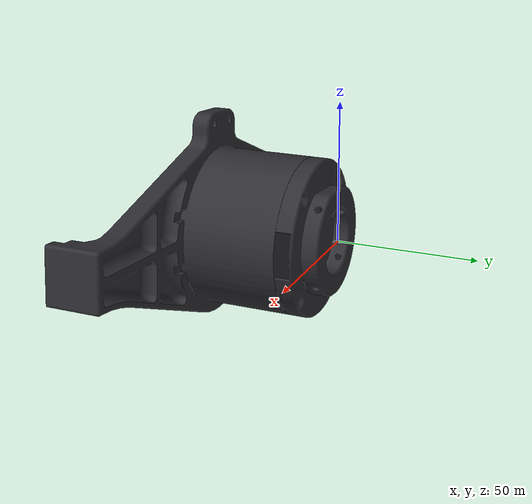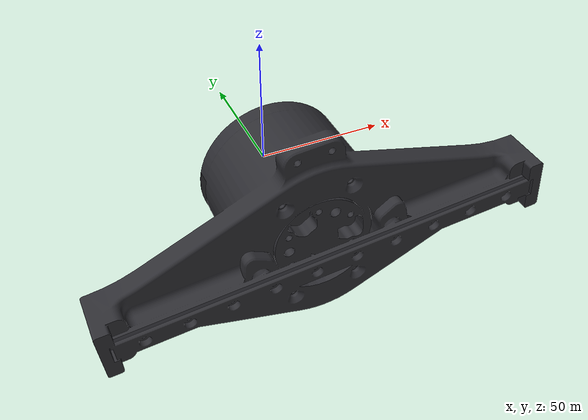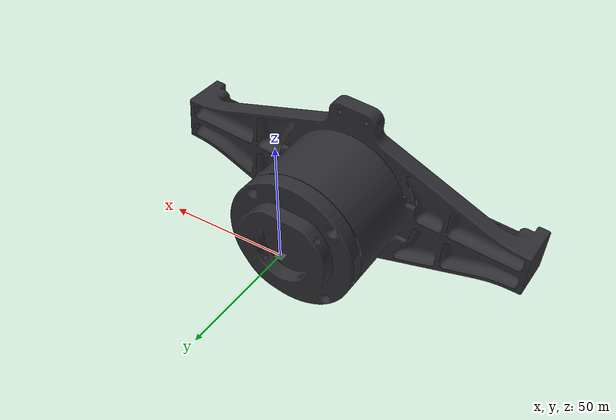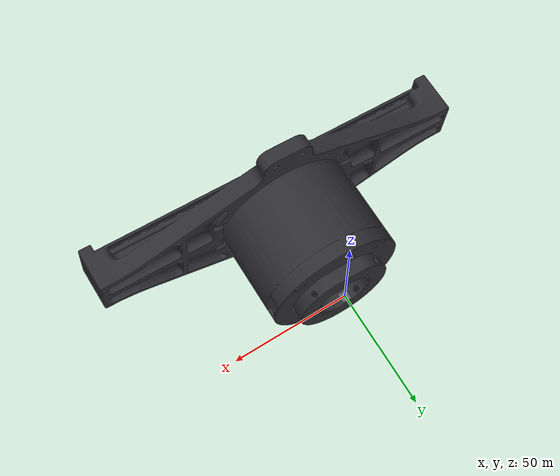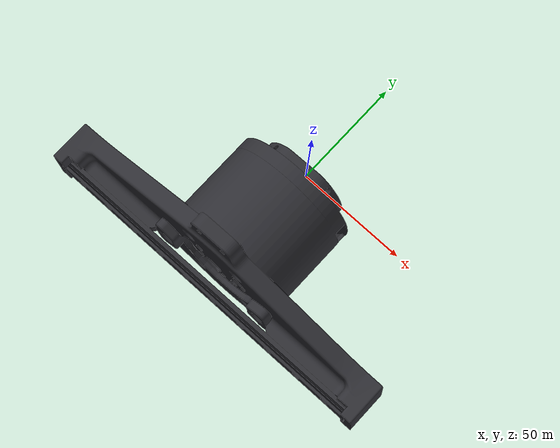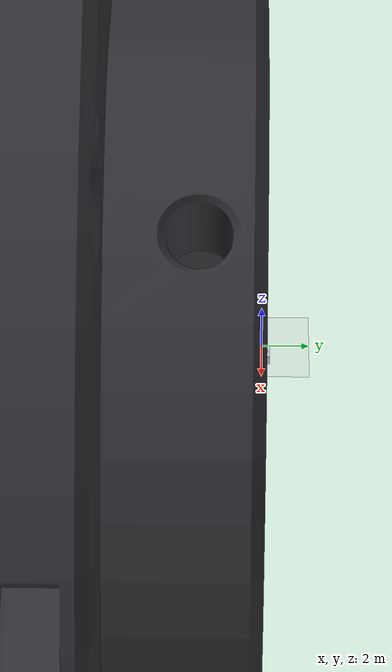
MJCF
<mujoco model="piper_x_scene">
  <compiler angle="radian" meshdir="meshes" autolimits="true"/>

  <option timestep="0.002" gravity="0 0 -9.81" iterations="50" solver="Newton" cone="elliptic"/>

  <asset>
    <texture type="skybox" builtin="gradient" rgb1="0.9 0.92 0.96" rgb2="0.65 0.7 0.78" width="512" height="512"/>
    <texture name="grid" type="2d" builtin="checker" width="512" height="512" rgb1="0.88 0.88 0.88" rgb2="0.78 0.78 0.78"/>
    <material name="grid_mat" texture="grid" texrepeat="4 4" reflectance="0.05"/>
    <material name="table_mat" rgba="0.75 0.78 0.82 1" specular="0.2" roughness="0.5"/>
    <material name="tray_bottom_mat" rgba="0.2 0.6 0.35 1" specular="0.1" roughness="0.6"/>
    <material name="tray_rim_mat" rgba="0.15 0.45 0.25 1" specular="0.2" roughness="0.5"/>
    <material name="cube_red_mat" rgba="0.85 0.15 0.15 1" specular="0.3" roughness="0.4"/>
    <material name="cube_blue_mat" rgba="0.15 0.3 0.85 1" specular="0.3" roughness="0.4"/>

    <material name="arm_dark" rgba="0.18 0.18 0.20 1" specular="0.4" roughness="0.4"/>
    <material name="arm_light" rgba="0.88 0.88 0.90 1" specular="0.3" roughness="0.4"/>
    <material name="arm_metal" rgba="0.7 0.7 0.72 1" specular="0.6" roughness="0.2"/>

    <mesh name="base_link" file="base_link.stl"/>
    <mesh name="link1" file="link1.stl"/>
    <mesh name="link2" file="link2.stl"/>
    <mesh name="link3" file="link3.stl"/>
    <mesh name="link4" file="link4.stl"/>
    <mesh name="link5" file="link5.stl"/>
    <mesh name="link6" file="link6.stl"/>
    <mesh name="flange" file="flange.stl"/>
    <mesh name="gripper_base" file="gripper_base.stl"/>
    <mesh name="gripper_link1" file="gripper_link1.stl"/>
    <mesh name="gripper_link2" file="gripper_link2.stl"/>
  </asset>

  <worldbody>
    <geom name="floor" type="plane" size="2 2 0.05" material="grid_mat"/>

    <light directional="true" pos="0.5 -0.5 1.5" dir="-0.3 0.3 -1" diffuse="0.85 0.85 0.85" specular="0.2 0.2 0.2"/>
    <light directional="false" pos="0.3 0 1.2" diffuse="0.4 0.4 0.4"/>

    <camera name="overview_camera" pos="0.55 0.3 0.6" quat="0.324332 0.103432 0.285683 0.895821" fovy="55"/>

    <!-- Table: surface top at z = 0.0 -->
    <body name="table" pos="0.32 0.0 -0.20">
      <geom name="table_top" type="box" size="0.40 0.35 0.20" material="table_mat" friction="0.8 0.005 0.0001"/>
    </body>

    <!-- Target Tray: base centered at (0.35, 0.20, 0.003) -->
    <body name="tray" pos="0.35 0.20 0.003">
      <geom name="tray_base" type="box" size="0.07 0.07 0.003" material="tray_bottom_mat" friction="0.8 0.005 0.0001"/>
      <geom name="tray_rim_n" type="box" size="0.075 0.005 0.015" pos="0 0.075 0.012" material="tray_rim_mat"/>
      <geom name="tray_rim_s" type="box" size="0.075 0.005 0.015" pos="0 -0.075 0.012" material="tray_rim_mat"/>
      <geom name="tray_rim_e" type="box" size="0.005 0.07 0.015" pos="0.075 0 0.012" material="tray_rim_mat"/>
      <geom name="tray_rim_w" type="box" size="0.005 0.07 0.015" pos="-0.075 0 0.012" material="tray_rim_mat"/>
      <site name="tray_center" pos="0 0 0.005" size="0.01" rgba="0 1 0 0"/>
    </body>

    <!-- Rigid Cubes: side 0.030m (half-size 0.015m) -->
    <body name="cube_red" pos="0.32 -0.10 0.015">
      <freejoint name="cube_red_joint"/>
      <geom name="cube_red_geom" type="box" size="0.015 0.015 0.015" mass="0.05" material="cube_red_mat"
            friction="1.2 0.005 0.0001" solref="0.004 1" solimp="0.95 0.99 0.001"/>
    </body>

    <body name="cube_blue" pos="0.38 -0.02 0.015">
      <freejoint name="cube_blue_joint"/>
      <geom name="cube_blue_geom" type="box" size="0.015 0.015 0.015" mass="0.05" material="cube_blue_mat"
            friction="1.2 0.005 0.0001" solref="0.004 1" solimp="0.95 0.99 0.001"/>
    </body>

    <!-- Piper X Manipulator: base mounted at origin -->
    <body name="base_link" pos="0 0 0">
      <inertial pos="-0.004736 0.000026 0.041452" mass="1.02" fullinertia="0.00267433 0.00282612 0.00089624 -0.00000073 -0.00017389 0.0000004"/>
      <geom name="base_link_geom" type="mesh" mesh="base_link" material="arm_dark"/>

      <body name="link1" pos="0 0 0.123" quat="0 0 0 1">
        <inertial pos="0.00053 -0.00039 -0.00315" mass="0.71" fullinertia="0.00050027 0.00040879 0.00045802 0.00000078 0.00000626 0.00000462"/>
        <joint name="joint1" type="hinge" axis="0 0 1" range="-2.6179938779914944 2.6179938779914944" damping="5.0" frictionloss="0.5"/>
        <geom name="link1_geom" type="mesh" mesh="link1" material="arm_light"/>

        <body name="link2" pos="0 0 0" quat="0.7054777 0.7054777 -0.0479709 0.0479709">
          <inertial pos="0.21856 -0.00859 0.00227" mass="1.16" fullinertia="0.00111915 0.06763251 0.067559 0.00182916 0.00019233 0.00000767"/>
          <joint name="joint2" type="hinge" axis="0 0 1" range="0 3.141592653589793" damping="8.0" frictionloss="0.5"/>
          <geom name="link2_geom" type="mesh" mesh="link2" material="arm_light"/>

          <body name="link3" pos="0.28503 0 0" quat="0.1511746 0 0 0.9885071">
            <inertial pos="0.2014 -0.00418 -0.00141" mass="0.67" fullinertia="0.00033471 0.03360411 0.03356941 0.00026891 0.00013918 0.00000052"/>
            <joint name="joint3" type="hinge" axis="0 0 1" range="-2.9670597283903604 0" damping="5.0" frictionloss="0.5"/>
            <geom name="link3_geom" type="mesh" mesh="link3" material="arm_light"/>

            <body name="link4" pos="0.27364 0 0" quat="0.9991874 0 0 0.0403062">
              <inertial pos="0.059 -0.05831 0.002" mass="0.39" fullinertia="0.00120173 0.00209324 0.00307814 0.00138165 0.00001187 0.00000217"/>
              <joint name="joint4" type="hinge" axis="0 0 1" range="-1.5533430342749532 1.5533430342749532" damping="2.0" frictionloss="0.2"/>
              <geom name="link4_geom" type="mesh" mesh="link4" material="arm_light"/>

              <body name="link5" pos="0.07466 0 0" quat="0.5 -0.5 0.5 0.5">
                <inertial pos="0.00005 -0.01282 -0.00429" mass="0.35" fullinertia="0.00022660 0.00017740 0.00019425 0.00000019 0.00000005 0.00000085"/>
                <joint name="joint5" type="hinge" axis="0 0 1" range="-1.5533430342749532 1.5533430342749532" damping="2.0" frictionloss="0.2"/>
                <geom name="link5_geom" type="mesh" mesh="link5" material="arm_light"/>

                <body name="link6" pos="0 -0.03526 0" quat="0.7071068 0.7071068 0 0">
                  <inertial pos="0 0 -0.0035" mass="0.007" fullinertia="0.00152112 0.00138626 0.00031152 0.00000202 0.00000261 0.00000002"/>
                  <joint name="joint6" type="hinge" axis="0 0 1" range="-3.141592653589793 3.141592653589793" damping="1.0" frictionloss="0.1"/>
                  <geom name="link6_geom" type="mesh" mesh="link6" material="arm_dark"/>
                  <site name="flange" pos="0 0 0" quat="1 0 0 0" size="0.005" rgba="0 1 0 0.5"/>

                  <body name="flange_link" pos="0 0 0" quat="1 0 0 0">
                    <inertial pos="0.001152 0.000782 0.004798" mass="0.04" fullinertia="0.00000994 0.00001051 0.00001965 0 0 0"/>
                    <geom name="flange_geom" type="mesh" mesh="flange" material="arm_metal"/>
                    <site name="tcp" pos="0 0 0.1425" quat="1 0 0 0" size="0.005" rgba="1 0 0 0.5"/>

                    <body name="gripper_base" pos="0 0 0.0045" quat="0.7071068 0 0 0.7071068">
                      <inertial pos="-0.000184 0.000081 0.032144" mass="0.45" fullinertia="0.00092934 0.00071447 0.00039442 0.00000034 -0.00000738 0.00000005"/>
                      <geom name="gripper_base_geom" type="mesh" mesh="gripper_base" material="arm_dark"/>

                      <body name="gripper_link1" pos="0 0 0.138" quat="0.7071068 0.7071068 0 0">
                        <inertial pos="0.000651 -0.049193 0.009723" mass="0.025" fullinertia="0.00007371 0.00000781 0.00007470 -0.00000113 0.00000021 -0.00001372"/>
                        <joint name="gripper_joint1" type="slide" axis="0 0 1" range="0 0.045" damping="10.0" frictionloss="0.1"/>
                        <geom name="gripper_link1_visual" type="mesh" mesh="gripper_link1" material="arm_dark" contype="0" conaffinity="0" group="2"/>
                        <geom name="gripper_link1_geom" type="box" pos="0 -0.0125 0.003" size="0.0145 0.0125 0.003"
                              material="arm_dark" condim="4" friction="1.5 0.01 0.001" solref="0.004 1" solimp="0.95 0.99 0.001"/>
                        <geom name="gripper_link1_arm" type="box" pos="0 -0.045 0.012" size="0.020 0.018 0.008"
                              material="arm_dark" condim="4" friction="1.5 0.01 0.001" solref="0.004 1" solimp="0.95 0.99 0.001"/>
                      </body>

                      <body name="gripper_link2" pos="0 0 0.138" quat="0 0 -0.7071068 -0.7071068">
                        <inertial pos="0.000651 -0.049193 0.009723" mass="0.025" fullinertia="0.00007371 0.00000781 0.00007470 -0.00000113 0.00000021 -0.00001372"/>
                        <joint name="gripper_joint2" type="slide" axis="0 0 1" range="0 0.045" damping="10.0" frictionloss="0.1"/>
                        <geom name="gripper_link2_visual" type="mesh" mesh="gripper_link2" material="arm_dark" contype="0" conaffinity="0" group="2"/>
                        <geom name="gripper_link2_geom" type="box" pos="0 -0.0125 0.003" size="0.0145 0.0125 0.003"
                              material="arm_dark" condim="4" friction="1.5 0.01 0.001" solref="0.004 1" solimp="0.95 0.99 0.001"/>
                        <geom name="gripper_link2_arm" type="box" pos="0 -0.045 0.012" size="0.020 0.018 0.008"
                              material="arm_dark" condim="4" friction="1.5 0.01 0.001" solref="0.004 1" solimp="0.95 0.99 0.001"/>
                      </body>
                    </body>
                  </body>
                </body>
              </body>
            </body>
          </body>
        </body>
      </body>
    </body>
  </worldbody>

  <actuator>
    <position name="joint1" joint="joint1" kp="400" kv="15" forcerange="-100 100"/>
    <position name="joint2" joint="joint2" kp="800" kv="30" forcerange="-100 100"/>
    <position name="joint3" joint="joint3" kp="800" kv="30" forcerange="-100 100"/>
    <position name="joint4" joint="joint4" kp="300" kv="5" forcerange="-100 100"/>
    <position name="joint5" joint="joint5" kp="200" kv="2.5" forcerange="-100 100"/>
    <position name="joint6" joint="joint6" kp="100" kv="0.5" forcerange="-100 100"/>
    <position name="gripper_joint1" joint="gripper_joint1" kp="600" kv="10" forcerange="-30 30"/>
    <position name="gripper_joint2" joint="gripper_joint2" kp="600" kv="10" forcerange="-30 30"/>
  </actuator>

  <contact>
    <exclude body1="base_link" body2="link1"/>
    <exclude body1="link1" body2="link2"/>
    <exclude body1="link2" body2="link3"/>
    <exclude body1="link3" body2="link4"/>
    <exclude body1="link4" body2="link5"/>
    <exclude body1="link5" body2="link6"/>
    <exclude body1="link6" body2="flange_link"/>
    <exclude body1="flange_link" body2="gripper_base"/>
    <exclude body1="gripper_base" body2="gripper_link1"/>
    <exclude body1="gripper_base" body2="gripper_link2"/>
    <exclude body1="gripper_link1" body2="gripper_link2"/>
  </contact>
</mujoco>
